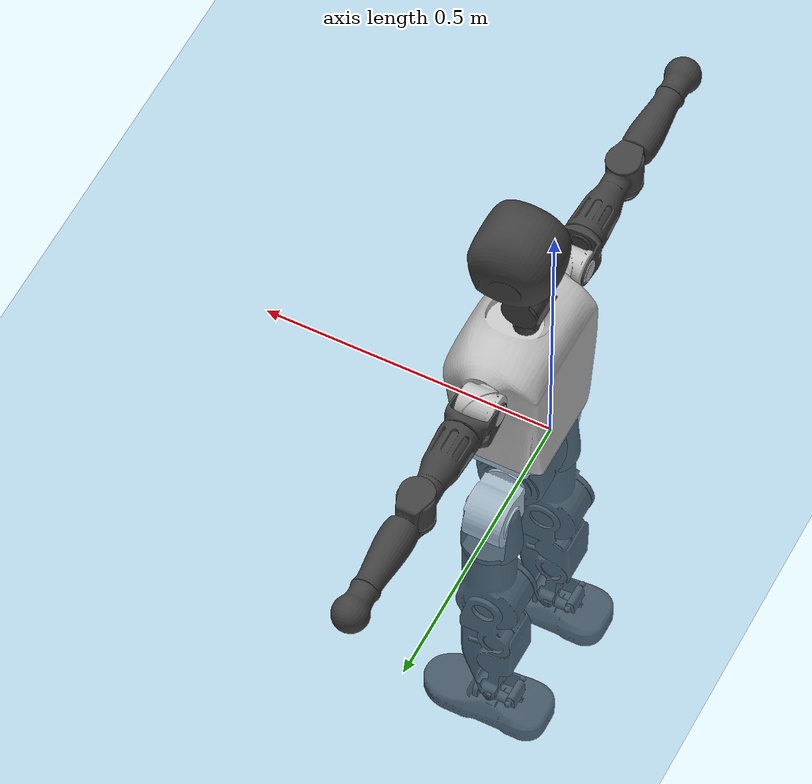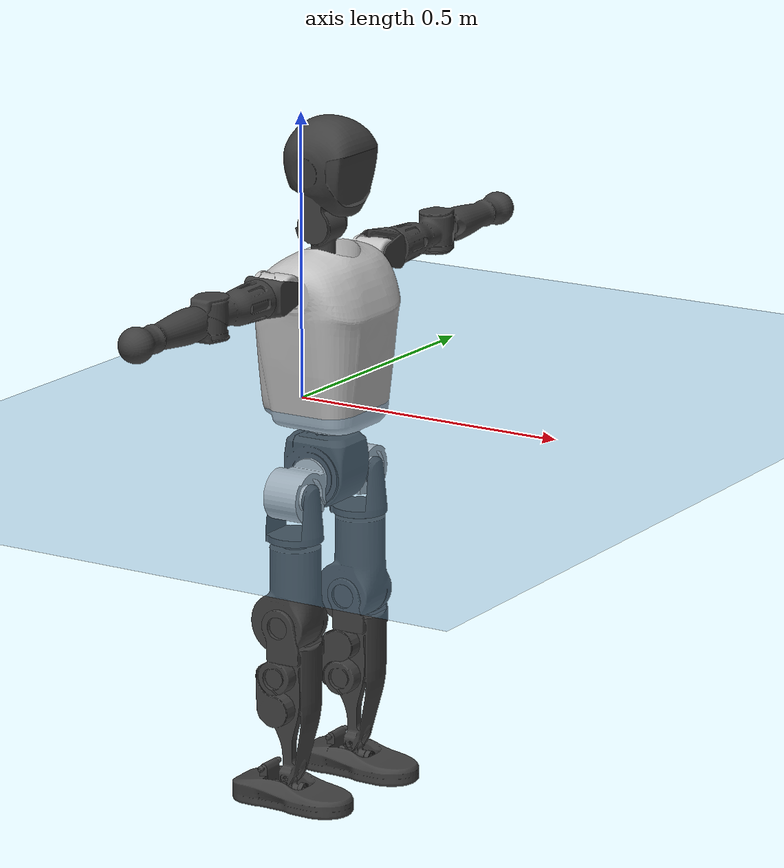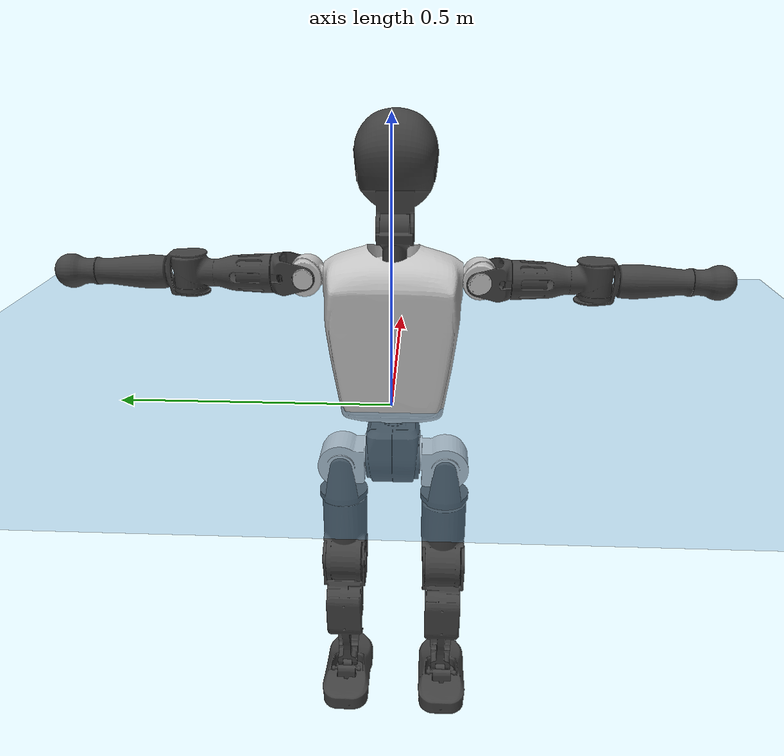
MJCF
<mujoco model="T1">
  <compiler angle="radian" assetdir="assets" balanceinertia="true" inertiafromgeom="false"/>

  <option timestep="0.005" density="1.2" viscosity="2e-05"/>

  <size nkey="1"/>

  <visual>
    <quality shadowsize="8192"/>
    <map shadowclip="0.5"/>
  </visual>

  <default>
    <default class="/">
      <joint armature="0.01" damping="0.01" frictionloss="0.1"/>
      <geom contype="0" conaffinity="0" group="1" solref="-1000 -80"/>
      <site size="0.01 0.005 0.005" group="5"/>
      <general forcelimited="true" biastype="affine" gainprm="25" biasprm="0 -25 -0.6"/>
      <default class="t1">
        <geom rgba="0.25 0.25 0.25 1"/>
        <default class="visual">
          <geom type="mesh" group="2"/>
        </default>
        <default class="collision">
          <geom group="3"/>
        </default>
        <default class="foot">
          <geom size="0.1115 0.05 0.015" type="box" condim="6" group="4" priority="1" solimp="0.015 1 0.015"/>
        </default>
        <default class="reward_collision_sphere">
          <geom group="5" rgba="1 0 0 1"/>
        </default>
      </default>
    </default>
  </default>

  <asset>
    <texture type="skybox" colorspace="auto" name="//unnamed_texture_0" builtin="gradient" rgb1="0.95 0.95 0.95" rgb2="0.95 0.95 0.95" width="100" height="600"/>
    <texture type="2d" colorspace="auto" name="texplane" builtin="checker" rgb1="0.345 0.575 0.748" rgb2="0.345 0.575 0.748" markrgb="1 1 1" width="512" height="512"/>
    <material name="MatPlane" class="/" texture="texplane" texuniform="true" texrepeat="2 2" specular="0.9"/>
    <mesh name="Trunk" class="/" file="Trunk.stl"/>
    <mesh name="H1" class="/" file="H1.stl"/>
    <mesh name="H2" class="/" file="H2.stl"/>
    <mesh name="AL1" class="/" file="AL1.stl"/>
    <mesh name="AL2" class="/" file="AL2.stl"/>
    <mesh name="AL3" class="/" file="AL3.stl"/>
    <mesh name="left_hand_link" class="/" file="left_hand_link.stl"/>
    <mesh name="AR1" class="/" file="AR1.stl"/>
    <mesh name="AR2" class="/" file="AR2.stl"/>
    <mesh name="AR3" class="/" file="AR3.stl"/>
    <mesh name="right_hand_link" class="/" file="right_hand_link.stl"/>
    <mesh name="Waist" class="/" file="Waist.stl"/>
    <mesh name="Hip_Pitch_Left" class="/" file="Hip_Pitch_Left.stl"/>
    <mesh name="Hip_Roll_Left" class="/" file="Hip_Roll_Left.stl"/>
    <mesh name="Hip_Yaw_Left" class="/" file="Hip_Yaw_Left.stl"/>
    <mesh name="Shank_Left" class="/" file="Shank_Left.stl"/>
    <mesh name="Ankle_Cross_Left" class="/" file="Ankle_Cross_Left.stl"/>
    <mesh name="left_foot_link" class="/" file="left_foot_link.stl"/>
    <mesh name="Hip_Pitch_Right" class="/" file="Hip_Pitch_Right.stl"/>
    <mesh name="Hip_Roll_Right" class="/" file="Hip_Roll_Right.stl"/>
    <mesh name="Hip_Yaw_Right" class="/" file="Hip_Yaw_Right.stl"/>
    <mesh name="Shank_Right" class="/" file="Shank_Right.stl"/>
    <mesh name="Ankle_Cross_Right" class="/" file="Ankle_Cross_Right.stl"/>
    <mesh name="right_foot_link" class="/" file="right_foot_link.stl"/>
  </asset>

  <worldbody>
    <geom name="floor" class="/" size="100 100 0.125" type="plane" group="0" material="MatPlane"/>
    <light name="toplight_shadow" class="/" pos="0 0 5" dir="0.0990148 0.0990148 -0.990148" type="directional" ambient="0.04 0.04 0.04" diffuse="0.55 0.55 0.55" specular="0.12 0.12 0.12"/>
    <light name="toplight_fill" class="/" pos="0 0 5" dir="0.0990148 0.0990148 -0.990148" type="directional" castshadow="false" ambient="0.04 0.04 0.04" diffuse="0.3 0.3 0.3" specular="0.08 0.08 0.08"/>
    <body name="trunk" childclass="t1" pos="0.00177645 -0.00032542 -0.000487384" quat="1 -0.000363354 -0.000378568 -2.48733e-05">
      <inertial pos="0.0413481 -0.000264506 0.10826" quat="0.999936 -0.000550036 -0.0113015 0.000758512" mass="9.51928" diaginertia="0.0237258 0.0637077 0.0676347"/>
      <joint name="//unnamed_joint_0" type="free" armature="0" damping="0" frictionloss="0"/>
      <geom name="//unnamed_geom_1" class="visual" rgba="0.76 0.76 0.76 1" mesh="Trunk"/>
      <geom name="//unnamed_geom_2" class="collision" size="0.0689606 0.0919475 0.137921" pos="0.0454789 0 0.124474" type="box"/>
      <geom name="//unnamed_geom_3" class="reward_collision_sphere" size="0.10574" pos="0.0454789 0 0.103728"/>
      <geom name="//unnamed_geom_4" class="reward_collision_sphere" size="0.0137921" pos="0.0454789 0.0818687 0"/>
      <geom name="//unnamed_geom_5" class="reward_collision_sphere" size="0.0137921" pos="0.0454789 -0.0818687 0"/>
      <geom name="//unnamed_geom_6" class="reward_collision_sphere" size="0.0137921" pos="0.0454789 0.103058 0.186711"/>
      <geom name="//unnamed_geom_7" class="reward_collision_sphere" size="0.0137921" pos="0.0454789 -0.103058 0.186711"/>
      <site name="imu" pos="-0.0135356 -0.00106089 0.0107432" size="0.00919475"/>
      <camera name="track" pos="0 -1.92632 0" quat="0.707107 0.707107 0 0" mode="trackcom"/>
      <camera name="ego_camera" pos="0.0924737 0 0.435659" quat="-0.5 -0.5 0.5 0.5"/>
      <body name="H1" pos="0.0444687 -0.0029447 0.249268" quat="1 -0.00010801 -0.000222651 -0.000424859">
        <inertial pos="-0.00271351 -0.00227746 0.0589315" quat="0.767573 -0.0252724 0.00254883 0.640458" mass="0.353264" diaginertia="6.04186e-05 0.00017795 0.000178045"/>
        <joint name="AAHead_yaw" pos="0 0 0" axis="0.0120236 -0.00710362 0.999902" range="-1.57887 1.56145" armature="0.0102859" damping="0.00553542" frictionloss="0.096903"/>
        <geom name="//unnamed_geom_8" class="visual" mesh="H1"/>
        <body name="H2" pos="-0.0012943 -0.000593172 0.0637831" quat="0.999999 -0.000406589 -0.00080501 0.000787536">
          <inertial pos="0.00518403 -0.00166397 0.101983" quat="0.987954 0.111208 -0.0754071 -0.0767747" mass="0.510755" diaginertia="0.000514738 0.00161941 0.00211386"/>
          <joint name="Head_pitch" pos="0 0 0" axis="-8.68693e-05 -1 -8.34959e-05" range="-1.24045 0.34815" armature="0.00998446" damping="0.00901987" frictionloss="0.0918307"/>
          <geom name="//unnamed_geom_9" class="visual" mesh="H2"/>
          <geom name="//unnamed_geom_10" class="collision" size="0.073558" pos="0.00757981 0 0.114101"/>
          <geom name="//unnamed_geom_11" class="reward_collision_sphere" size="0.0827527" pos="0.0151596 0 0.103728"/>
        </body>
      </body>
      <body name="AL1" pos="0.0453745 0.105714 0.228749" quat="1 1.09743e-05 0.000398613 2.62094e-05">
        <inertial pos="-0.00308899 0.0459203 -0.00234924" quat="0.505615 0.498377 -0.500451 0.495502" mass="0.421355" diaginertia="0.000352742 0.00110281 0.000353736"/>
        <joint name="Left_Shoulder_Pitch" pos="0 0 0" axis="0.00796879 0.999968 -0.000296309" stiffness="0.01228" range="-3.29826 1.21434" armature="0.00995472" damping="0.00658535" frictionloss="0.0830047"/>
        <geom name="//unnamed_geom_12" class="visual" rgba="0.76 0.76 0.76 1" mesh="AL1"/>
        <body name="AL2" pos="-0.000922768 0.0487389 0.00190647" quat="1 5.12009e-05 -1.65085e-05 4.90316e-06">
          <inertial pos="0.00309177 0.037512 0.000727163" quat="0.487944 0.511536 -0.488231 0.511734" mass="0.124817" diaginertia="0.000106811 0.000305679 0.00021511"/>
          <joint name="Left_Shoulder_Roll" pos="0 0 0" axis="-1 -5.09442e-05 3.64581e-05" range="-1.53656 1.68601" armature="0.00927157" damping="0.0197724" frictionloss="0.0945074"/>
          <geom name="//unnamed_geom_13" class="visual" mesh="AL2"/>
          <body name="AL3" pos="0.00328684 0.0580719 -0.000864851" quat="1 -0.000502505 -0.000378579 0.000661397">
            <inertial pos="3.85961e-05 0.0810443 0.0022863" quat="0.709269 0.704845 -0.0101487 0.00517932" mass="0.793966" diaginertia="0.00328515 0.0105028 0.000737299"/>
            <joint name="Left_Elbow_Pitch" pos="0 0 0" axis="0.000598183 -0.99999 -0.00432139" range="-2.2681 2.3185" armature="0.00795363" damping="0.0021297" frictionloss="0.0894523"/>
            <geom name="//unnamed_geom_14" class="visual" mesh="AL3"/>
            <geom name="//unnamed_geom_15" class="collision" size="0.0275842 0.0689606" pos="0 0.0481581 0" quat="0.707105 0.707108 0 0" type="cylinder"/>
            <geom name="//unnamed_geom_16" class="reward_collision_sphere" size="0.0331011"/>
            <body name="left_hand_link" pos="0.000624305 0.142082 -4.40134e-05" quat="0.999999 0.000804811 0.000362698 -0.000748665">
              <inertial pos="0.00240676 0.1031 0.00140172" quat="0.708295 0.705916 -0.000321194 0.00090036" mass="0.250322" diaginertia="0.0020453 0.00679092 0.000251207"/>
              <joint name="Left_Elbow_Yaw" pos="0 0 0" axis="0.00451275 -0.000930732 0.999989" range="-2.42451 -0.028544" armature="0.0103" damping="0.0229437" frictionloss="0.102889"/>
              <geom name="//unnamed_geom_17" class="visual" mesh="left_hand_link"/>
              <geom name="//unnamed_geom_18" class="collision" size="0.0275842 0.0804541" pos="0 0.125211 0" quat="0.707105 0.707108 0 0" type="cylinder"/>
              <geom name="//unnamed_geom_19" class="reward_collision_sphere" size="0.0459737"/>
              <geom name="//unnamed_geom_20" class="reward_collision_sphere" size="0.0321816" pos="0 0.105948 0"/>
              <geom name="//unnamed_geom_21" class="reward_collision_sphere" size="0.0321816" pos="0 0.20708 0"/>
            </body>
          </body>
        </body>
      </body>
      <body name="AR1" pos="0.0445582 -0.104231 0.226868" quat="1 -9.13726e-05 -0.000284875 -0.000123773">
        <inertial pos="-0.000324236 -0.0441999 0.000127756" quat="0.503884 0.496038 -0.504035 0.49598" mass="0.414778" diaginertia="0.000345097 0.00107873 0.00035085"/>
        <joint name="Right_Shoulder_Pitch" pos="0 0 0" axis="-0.00294474 -0.999995 0.000883321" stiffness="0.0136721" range="-1.22067 3.29637" armature="0.00998321" damping="0" frictionloss="0.0860298"/>
        <geom name="//unnamed_geom_22" class="visual" rgba="0.76 0.76 0.76 1" mesh="AR1"/>
        <body name="AR2" pos="0.00114562 -0.0438908 -0.00272985" quat="1 0.000258373 -4.69298e-05 -0.000378222">
          <inertial pos="0.00152721 -0.0342452 -0.00251662" quat="0.510815 0.48835 -0.512382 0.487901" mass="0.127891" diaginertia="0.000102782 0.000283037 0.00021734"/>
          <joint name="Right_Shoulder_Roll" pos="0 0 0" axis="-0.999861 0.0125838 -0.0109312" range="-1.68769 1.58782" armature="0.00937217" damping="0.0218443" frictionloss="0.0899965"/>
          <geom name="//unnamed_geom_23" class="visual" mesh="AR2"/>
          <body name="AR3" pos="0.0012728 -0.0568846 -0.000299718" quat="1 5.52703e-05 4.12659e-05 2.56413e-05">
            <inertial pos="-0.00305156 -0.0825608 -0.000496327" quat="0.709667 0.704524 -0.00311163 0.00295327" mass="0.789914" diaginertia="0.00324888 0.0105853 0.000767697"/>
            <joint name="Right_Elbow_Pitch" pos="0 0 0" axis="-0.00315321 0.999992 0.0024209" range="-2.26923 2.23303" armature="0.00927289" damping="0.0130272" frictionloss="0.0794836"/>
            <geom name="//unnamed_geom_24" class="visual" mesh="AR3"/>
            <geom name="//unnamed_geom_25" class="collision" size="0.0275842 0.0689606" pos="0 -0.0481581 0" quat="0.707105 0.707108 0 0" type="cylinder"/>
            <geom name="//unnamed_geom_26" class="reward_collision_sphere" size="0.0331011"/>
            <body name="right_hand_link" pos="0.000497017 -0.140181 -0.000781515" quat="1 0.000247881 -0.000169197 0.000109061">
              <inertial pos="0.000483234 -0.104425 0.00343544" quat="0.7063 0.707912 0.000719963 0.000340179" mass="0.255697" diaginertia="0.00203515 0.00658178 0.00025946"/>
              <joint name="Right_Elbow_Yaw" pos="0 0 0" axis="0.00175764 -0.00245568 0.999995" stiffness="0.00715889" range="0.0266746 2.44807" armature="0.00903291" damping="0.00379654" frictionloss="0.0795743"/>
              <geom name="//unnamed_geom_27" class="visual" mesh="right_hand_link"/>
              <geom name="//unnamed_geom_28" class="collision" size="0.0275842 0.0804541" pos="0 -0.125211 0" quat="0.707105 0.707108 0 0" type="cylinder"/>
              <geom name="//unnamed_geom_29" class="reward_collision_sphere" size="0.0459737"/>
              <geom name="//unnamed_geom_30" class="reward_collision_sphere" size="0.0321816" pos="0 -0.105948 0"/>
              <geom name="//unnamed_geom_31" class="reward_collision_sphere" size="0.0321816" pos="0 -0.20708 0"/>
            </body>
          </body>
        </body>
      </body>
      <body name="Waist" pos="0.0476819 -0.000666248 -0.120436" quat="1 -0.000624587 -0.000226252 -4.33274e-05">
        <inertial pos="0.00188569 -0.00047787 0.00730673" quat="0.984542 -0.0029475 -0.175103 0.00277818" mass="1.95365" diaginertia="0.00138519 0.00433059 0.00587284"/>
        <joint name="Waist" pos="0 0 0" axis="0.0104137 -0.0077225 0.999916" range="-1.59895 1.54296" armature="0.00917504" damping="0.00871436" frictionloss="0.0796381"/>
        <geom name="//unnamed_geom_32" class="visual" mesh="Waist"/>
        <body name="Hip_Pitch_Left" pos="0.00175781 0.100598 0.000307601" quat="1 -0.000289541 4.15636e-05 -0.000396019">
          <inertial pos="0.00103504 -0.00979299 -0.0192869" quat="0.975435 0.219663 0.0165222 -0.0011711" mass="0.789432" diaginertia="0.000443232 0.00124428 0.00155386"/>
          <joint name="Left_Hip_Pitch" pos="0 0 0" axis="-0.00307827 0.999993 -0.00189393" stiffness="0.0050619" range="-1.79191 1.57745" armature="0.0099876" damping="0.0222459" frictionloss="0.0920298"/>
          <geom name="//unnamed_geom_33" class="visual" rgba="0.76 0.76 0.76 1" mesh="Hip_Pitch_Left"/>
          <body name="Hip_Roll_Left" pos="0.00276312 -0.000945603 -0.0213204" quat="0.999999 0.00146732 -0.000360106 -7.66034e-05">
            <inertial pos="0.00308396 0.000714312 -0.0555312" quat="0.707564 -0.00357614 -0.00606226 0.706615" mass="0.28048" diaginertia="0.000407732 0.00121377 0.000589969"/>
            <joint name="Left_Hip_Roll" pos="0 0 0" axis="-0.999899 -0.00871028 0.0112433" range="-1.51303 0.214113" armature="0.00863095" damping="0.00166948" frictionloss="0.091715"/>
            <geom name="//unnamed_geom_34" class="visual" mesh="Hip_Roll_Left"/>
            <geom name="//unnamed_geom_35" class="reward_collision_sphere" size="0.0505711"/>
            <body name="Hip_Yaw_Left" pos="0.00184559 -0.00139859 -0.0845062" quat="0.999999 6.24193e-05 0.000674522 -0.00123725">
              <inertial pos="-0.00776229 0.000579635 -0.0921908" quat="0.698037 -0.0383731 -0.0313904 0.714343" mass="1.69422" diaginertia="0.00674082 0.0213832 0.00315521"/>
              <joint name="Left_Hip_Yaw" pos="0 0 0" axis="-0.000460639 -0.000650948 -1" range="-0.951224 1.06102" armature="0.00922174" damping="0.00589888" frictionloss="0.103361"/>
              <geom name="//unnamed_geom_36" class="visual" mesh="Hip_Yaw_Left"/>
              <geom name="//unnamed_geom_37" class="collision" size="0.0459737 0.073558" type="cylinder"/>
              <body name="Shank_Left" pos="-0.0113263 0.00227578 -0.139416" quat="1 -5.23072e-05 1.9636e-05 -7.06399e-05">
                <inertial pos="-0.00722578 9.71918e-05 -0.129643" quat="0.997923 -0.001608 -0.0111718 0.0634261" mass="1.32961" diaginertia="0.00873853 0.0297402 0.00229972"/>
                <joint name="Left_Knee_Pitch" pos="0 0 0" axis="-0.00857436 0.999935 -0.00753382" range="0.00818768 2.3859" armature="0.00822892" damping="0.00804075" frictionloss="0.104459"/>
                <geom name="//unnamed_geom_38" class="visual" mesh="Shank_Left"/>
                <geom name="//unnamed_geom_39" class="collision" size="0.0459737 0.0689606" pos="0 0 -0.124474" type="cylinder"/>
                <geom name="//unnamed_geom_40" class="reward_collision_sphere" size="0.0597659"/>
                <body name="Ankle_Cross_Left" pos="0.000441218 -1.88699e-05 -0.291104" quat="1 0.000170857 -0.000146875 1.29311e-05">
                  <inertial pos="-0.00274899 -0.000783697 -0.00785401" quat="0.440907 0.551804 0.551883 0.443326" mass="0.0575808" diaginertia="7.40385e-06 2.14795e-05 1.3618e-05"/>
                  <joint name="Left_Ankle_Pitch" pos="0 0 0" axis="0.00846093 0.999954 -0.00459435" range="-0.869863 0.311452" armature="0.0104492" damping="0.0127208" frictionloss="0.0898678"/>
                  <geom name="//unnamed_geom_41" class="visual" mesh="Ankle_Cross_Left"/>
                  <body name="left_foot_link" pos="0.00191994 -0.000784419 -0.0132022" quat="1 0.000217054 -3.36566e-05 4.01364e-05">
                    <inertial pos="-0.00273045 0.00193352 -0.00950637" quat="0.000335359 0.619602 0.00401993 0.784906" mass="0.536294" diaginertia="0.000666541 0.00194069 0.00252632"/>
                    <joint name="Left_Ankle_Roll" pos="0 0 0" axis="-0.999985 -0.00539672 -0.00125254" range="-0.416411 0.42695" armature="0.00932882" damping="0.000998031" frictionloss="0.0961222"/>
                    <geom name="//unnamed_geom_42" class="visual" mesh="left_foot_link"/>
                    <geom name="left_foot" class="foot" size="0.101531 0.0446038 0.0137142" pos="0.00757981 0 -0.0155592"/>
                    <geom name="//unnamed_geom_44" class="reward_collision_sphere" size="0.0478127" pos="0.00757981 0 -0.0155592"/>
                    <geom name="//unnamed_geom_45" class="reward_collision_sphere" size="0.0275842" pos="0.0720082 -0.0221527 -0.0155592"/>
                    <geom name="//unnamed_geom_46" class="reward_collision_sphere" size="0.0275842" pos="-0.0530587 -0.0221527 -0.0155592"/>
                    <site name="left_foot" class="foot" pos="0.00757981 0 -0.0155592" size="0.00919475"/>
                  </body>
                </body>
              </body>
            </body>
          </body>
        </body>
        <body name="Hip_Pitch_Right" pos="-0.000638127 -0.101362 -0.00146407" quat="1 1.26494e-06 -8.52092e-07 1.64015e-06">
          <inertial pos="0.00116111 0.00736473 -0.0212226" quat="0.972906 -0.23048 0.0176362 -0.0046492" mass="0.787531" diaginertia="0.000436713 0.00125429 0.00151135"/>
          <joint name="Right_Hip_Pitch" pos="0 0 0" axis="-7.49261e-05 -1 -1.04848e-05" range="-1.62054 1.85472" armature="0.00911971" damping="0.0205367" frictionloss="0.0794986"/>
          <geom name="//unnamed_geom_47" class="visual" rgba="0.76 0.76 0.76 1" mesh="Hip_Pitch_Right"/>
          <body name="Hip_Roll_Right" pos="0.00279665 0.000206138 -0.0214407" quat="1 0.000149889 -0.000202945 -0.000114931">
            <inertial pos="0.00172545 -0.00277465 -0.0533112" quat="0.707671 -0.00910201 -0.00739964 0.706445" mass="0.290065" diaginertia="0.000424668 0.00121855 0.000619586"/>
            <joint name="Right_Hip_Roll" pos="0 0 0" axis="-0.99989 0.0108446 -0.0101446" range="-0.204369 1.59185" armature="0.00836658" damping="0.00325835" frictionloss="0.0869764"/>
            <geom name="//unnamed_geom_48" class="visual" mesh="Hip_Roll_Right"/>
            <geom name="//unnamed_geom_49" class="reward_collision_sphere" size="0.0505711"/>
            <body name="Hip_Yaw_Right" pos="-0.000865249 -1.44942e-05 -0.087799" quat="1 0.000523935 0.000263661 6.80406e-05">
              <inertial pos="-0.00399182 0.00216369 -0.0942021" quat="0.714906 -0.0291858 -0.0209853 0.698296" mass="1.69143" diaginertia="0.00652257 0.0210065 0.00313938"/>
              <joint name="Right_Hip_Yaw" pos="0 0 0" axis="0.00405826 -0.000957805 -0.999991" stiffness="0.000973999" range="-0.992763 0.985907" armature="0.0097738" damping="0.0144152" frictionloss="0.0917963"/>
              <geom name="//unnamed_geom_50" class="visual" mesh="Hip_Yaw_Right"/>
              <geom name="//unnamed_geom_51" class="collision" size="0.0459737 0.073558" type="cylinder"/>
              <body name="Shank_Right" pos="-0.00921403 -0.00280547 -0.137101" quat="1 5.45914e-05 -0.00010866 0.000126764">
                <inertial pos="-0.00702663 0.00198959 -0.128044" quat="0.999008 0.00387799 -0.0181469 -0.0404683" mass="1.41703" diaginertia="0.0084156 0.0278573 0.0023129"/>
                <joint name="Right_Knee_Pitch" pos="0 0 0" axis="0.00584684 -0.99997 -0.00513233" range="-2.36333 0.00561505" armature="0.0091592" damping="0.00351132" frictionloss="0.0898424"/>
                <geom name="//unnamed_geom_52" class="visual" mesh="Shank_Right"/>
                <geom name="//unnamed_geom_53" class="collision" size="0.0459737 0.0689606" pos="0 0 -0.124474" type="cylinder"/>
                <geom name="//unnamed_geom_54" class="reward_collision_sphere" size="0.0597659"/>
                <body name="Ankle_Cross_Right" pos="-0.000892794 -0.00157436 -0.28946" quat="1 3.43777e-06 1.29891e-05 1.65562e-05">
                  <inertial pos="-0.00203596 -0.00239254 -0.00912454" quat="0.452913 0.550989 0.550525 0.433824" mass="0.0567087" diaginertia="7.25225e-06 1.98828e-05 1.30833e-05"/>
                  <joint name="Right_Ankle_Pitch" pos="0 0 0" axis="0.00289067 -0.999957 0.0088325" range="-0.335001 0.868239" armature="0.010073" damping="0" frictionloss="0.0894147"/>
                  <geom name="//unnamed_geom_55" class="visual" mesh="Ankle_Cross_Right"/>
                  <body name="right_foot_link" pos="-0.000142334 -0.00160409 -0.0095708" quat="1 -1.65738e-05 -3.08979e-05 -4.59647e-05">
                    <inertial pos="0.000891138 -0.000121233 -0.00680339" quat="-0.00248741 0.617829 0.00572075 0.786288" mass="0.538493" diaginertia="0.000695589 0.00196041 0.00260786"/>
                    <joint name="Right_Ankle_Roll" pos="0 0 0" axis="-0.999989 -0.00382546 -0.00280892" stiffness="0.002326" range="-0.451894 0.406361" armature="0.00951932" damping="0.0140217" frictionloss="0.0835877"/>
                    <geom name="//unnamed_geom_56" class="visual" mesh="right_foot_link"/>
                    <geom name="right_foot" class="foot" size="0.10567 0.0448363 0.0140349" pos="0.00757981 0 -0.0155592"/>
                    <geom name="//unnamed_geom_58" class="reward_collision_sphere" size="0.036779"/>
                    <geom name="//unnamed_geom_59" class="reward_collision_sphere" size="0.0275842" pos="0.00757981 0 -0.0155592"/>
                    <geom name="//unnamed_geom_60" class="reward_collision_sphere" size="0.0275842" pos="0.0720082 0.0221527 -0.0155592"/>
                    <geom name="//unnamed_geom_61" class="reward_collision_sphere" size="0.0275842" pos="-0.0530587 0.0221527 -0.0155592"/>
                    <site name="right_foot" class="foot" pos="0.00757981 0 -0.0155592" size="0.00919475"/>
                  </body>
                </body>
              </body>
            </body>
          </body>
        </body>
      </body>
    </body>
  </worldbody>

  <contact>
    <pair class="/" geom1="floor" geom2="left_foot" name="//unnamed_contact_0"/>
    <pair class="/" geom1="floor" geom2="right_foot" name="//unnamed_contact_1"/>
  </contact>

  <actuator>
    <general name="AAHead_yaw" class="/" joint="AAHead_yaw" forcerange="-6.91658 6.91658" gainprm="22.8876" biasprm="0 -22.8876 -0.507536"/>
    <general name="Head_pitch" class="/" joint="Head_pitch" forcerange="-6.17968 6.17968" gainprm="22.8876" biasprm="0 -22.8876 -0.507536"/>
    <general name="Left_Shoulder_Pitch" class="/" joint="Left_Shoulder_Pitch" forcerange="-16.3429 16.3429" gainprm="22.8876" biasprm="0 -22.8876 -0.507536"/>
    <general name="Left_Shoulder_Roll" class="/" joint="Left_Shoulder_Roll" forcerange="-16.2697 16.2697" gainprm="22.8876" biasprm="0 -22.8876 -0.507536"/>
    <general name="Left_Elbow_Pitch" class="/" joint="Left_Elbow_Pitch" forcerange="-17.952 17.952" gainprm="22.8876" biasprm="0 -22.8876 -0.507536"/>
    <general name="Left_Elbow_Yaw" class="/" joint="Left_Elbow_Yaw" forcerange="-17.4415 17.4415" gainprm="22.8876" biasprm="0 -22.8876 -0.507536"/>
    <general name="Right_Shoulder_Pitch" class="/" joint="Right_Shoulder_Pitch" forcerange="-16.4949 16.4949" gainprm="22.8876" biasprm="0 -22.8876 -0.507536"/>
    <general name="Right_Shoulder_Roll" class="/" joint="Right_Shoulder_Roll" forcerange="-17.1374 17.1374" gainprm="22.8876" biasprm="0 -22.8876 -0.507536"/>
    <general name="Right_Elbow_Pitch" class="/" joint="Right_Elbow_Pitch" forcerange="-16.5191 16.5191" gainprm="22.8876" biasprm="0 -22.8876 -0.507536"/>
    <general name="Right_Elbow_Yaw" class="/" joint="Right_Elbow_Yaw" forcerange="-15.8798 15.8798" gainprm="22.8876" biasprm="0 -22.8876 -0.507536"/>
    <general name="Waist" class="/" joint="Waist" forcerange="-28.678 28.678" gainprm="22.8876" biasprm="0 -22.8876 -0.507536"/>
    <general name="Left_Hip_Pitch" class="/" joint="Left_Hip_Pitch" forcerange="-40.9507 40.9507" gainprm="22.8876" biasprm="0 -22.8876 -0.507536"/>
    <general name="Left_Hip_Roll" class="/" joint="Left_Hip_Roll" forcerange="-26.4841 26.4841" gainprm="22.8876" biasprm="0 -22.8876 -0.507536"/>
    <general name="Left_Hip_Yaw" class="/" joint="Left_Hip_Yaw" forcerange="-25.3413 25.3413" gainprm="22.8876" biasprm="0 -22.8876 -0.507536"/>
    <general name="Left_Knee_Pitch" class="/" joint="Left_Knee_Pitch" forcerange="-55.7976 55.7976" gainprm="22.8876" biasprm="0 -22.8876 -0.507536"/>
    <general name="Left_Ankle_Pitch" class="/" joint="Left_Ankle_Pitch" forcerange="-17.7713 17.7713" gainprm="22.8876" biasprm="0 -22.8876 -0.507536"/>
    <general name="Left_Ankle_Roll" class="/" joint="Left_Ankle_Roll" forcerange="-13.5649 13.5649" gainprm="22.8876" biasprm="0 -22.8876 -0.507536"/>
    <general name="Right_Hip_Pitch" class="/" joint="Right_Hip_Pitch" forcerange="-41.34 41.34" gainprm="22.8876" biasprm="0 -22.8876 -0.507536"/>
    <general name="Right_Hip_Roll" class="/" joint="Right_Hip_Roll" forcerange="-28.532 28.532" gainprm="22.8876" biasprm="0 -22.8876 -0.507536"/>
    <general name="Right_Hip_Yaw" class="/" joint="Right_Hip_Yaw" forcerange="-28.0917 28.0917" gainprm="22.8876" biasprm="0 -22.8876 -0.507536"/>
    <general name="Right_Knee_Pitch" class="/" joint="Right_Knee_Pitch" forcerange="-50.3505 50.3505" gainprm="22.8876" biasprm="0 -22.8876 -0.507536"/>
    <general name="Right_Ankle_Pitch" class="/" joint="Right_Ankle_Pitch" forcerange="-16.5965 16.5965" gainprm="22.8876" biasprm="0 -22.8876 -0.507536"/>
    <general name="Right_Ankle_Roll" class="/" joint="Right_Ankle_Roll" forcerange="-13.5233 13.5233" gainprm="22.8876" biasprm="0 -22.8876 -0.507536"/>
  </actuator>

  <sensor>
    <gyro site="imu" name="imu_angular_velocity"/>
    <velocimeter site="imu" name="imu_linear_velocity"/>
    <framelinvel objtype="site" objname="left_foot" name="left_foot_global_linear_velocity"/>
    <framelinvel objtype="site" objname="right_foot" name="right_foot_global_linear_velocity"/>
  </sensor>

  <keyframe>
    <key name="home" qpos="0 0 0.6385 1 0 0 0 0 0 0 1.4 0 -0.4 0 -1.4 0 0.4 0 -0.4 0 0 0.8 -0.4 0 0.4 0 0 -0.8 0.4 0"/>
  </keyframe>
</mujoco>
